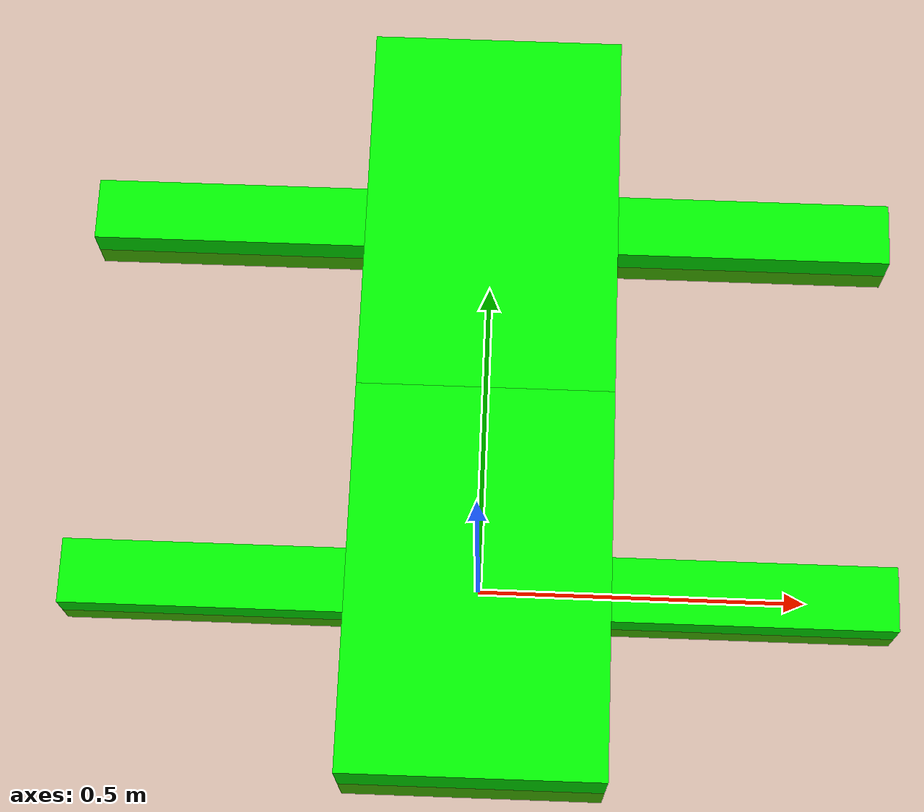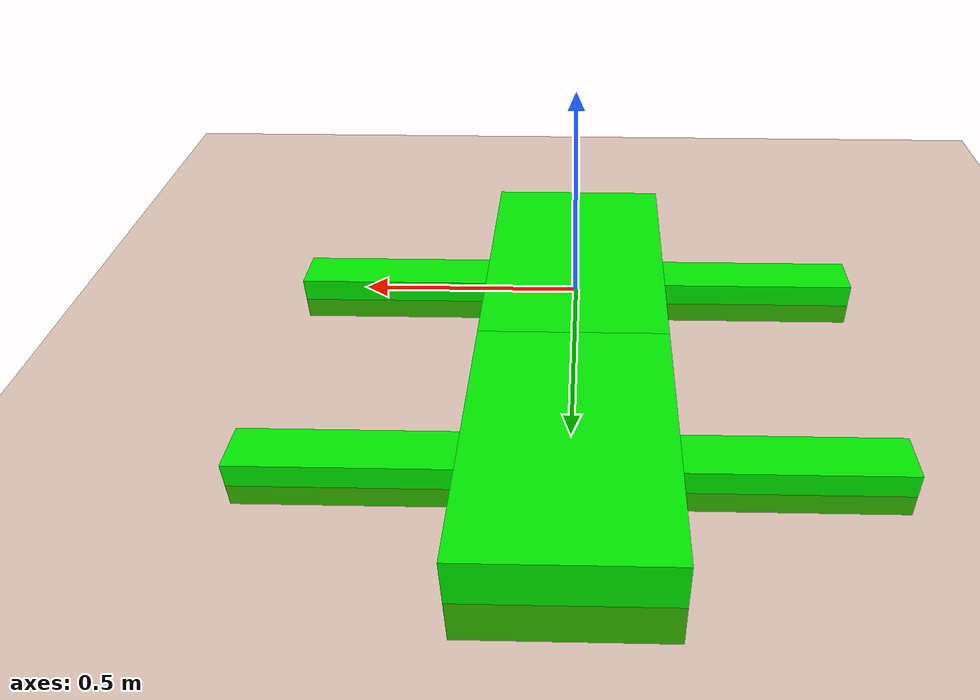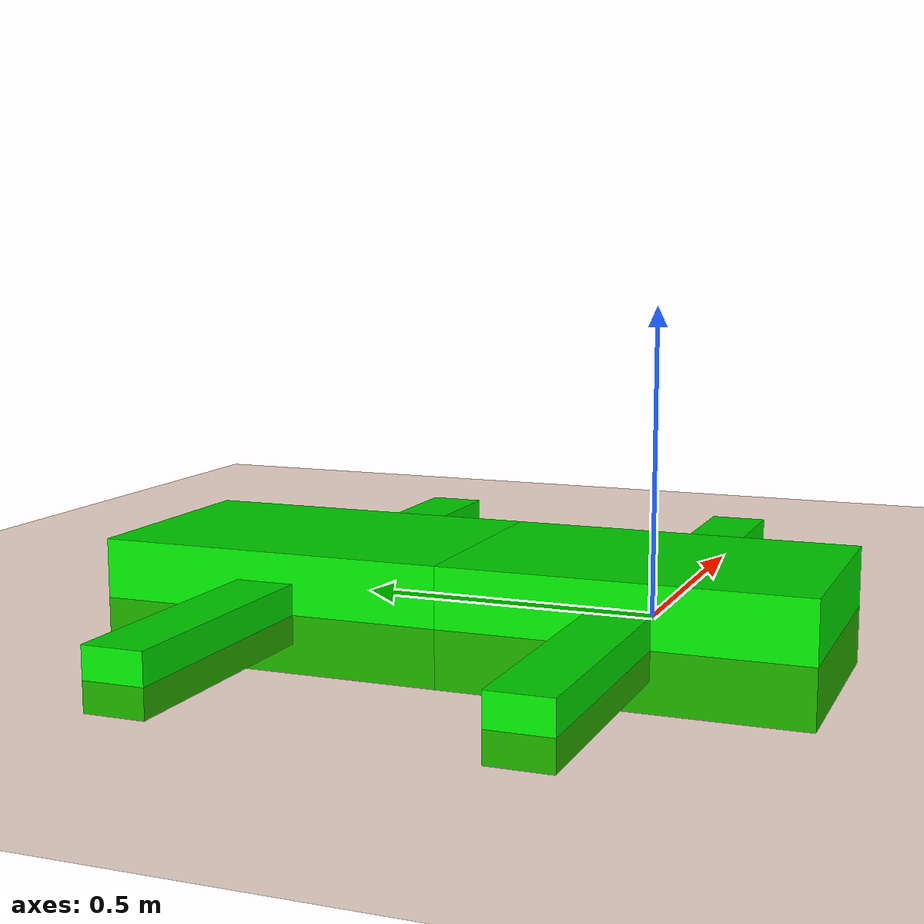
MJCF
<mujoco>
  <worldbody>
    <light diffuse=".5 .5 .5" pos="0 0 0" dir="0 -1 0" />
    <geom type="plane" size="10 10 0.1" rgba=".5 0.2 0 1" />
    <body name="unit0" pos="0 0 0" euler="0 0 0">
      <joint name="body_joint0" type="free" axis="0 0 0" pos="0 0 0" range="-20 20" />
      <body name="body0" pos="0 0.0 0" euler="0 0 0">
        <geom type="box" size=".2 .3 .1" rgba="0 .9 0 1" mass="1.2475272344667623" />
      </body>
      <body name="body0leg1" pos=".4 0.0 0" euler="0 -90 90">
        <joint name="body0j1" type="hinge" axis="0 1 0" pos="0 0 .25" range="-30 30" />
        <geom type="box" size=".05 .05 0.23751837304104093" rgba="0 .9 0 1" mass="0.8760923582264782" />
      </body>
      <body name="body0leg2" pos="-.4 0.0 0" euler="0 90 -90">
        <joint name="body0j2" type="hinge" axis="0 1 0" pos="0 0 .25" range="-30 30" />
        <geom type="box" size=".05 .05 0.23751837304104093" rgba="0 .9 0 1" mass="0.8760923582264782" />
      </body>
      <body name="unit1" pos="0 0 0" euler="0 0 0">
        <joint name="body_joint1" type="hinge" axis="0 0 1" pos="0 .35 0" range="-20 20" />
        <body name="body1" pos="0 0.6 0" euler="0 0 0">
          <geom type="box" size=".2 .3 .1" rgba="0 .9 0 1" mass="1.2475272344667623" />
        </body>
        <body name="body1leg1" pos=".4 0.6 0" euler="0 -90 90">
          <joint name="body1j1" type="hinge" axis="0 1 0" pos="0 0 .25" range="-30 30" />
          <geom type="box" size=".05 .05 0.23751837304104093" rgba="0 .9 0 1" mass="0.8760923582264782" />
        </body>
        <body name="body1leg2" pos="-.4 0.6 0" euler="0 90 -90">
          <joint name="body1j2" type="hinge" axis="0 1 0" pos="0 0 .25" range="-30 30" />
          <geom type="box" size=".05 .05 0.23751837304104093" rgba="0 .9 0 1" mass="0.8760923582264782" />
        </body>
      </body>
    </body>
  </worldbody>
  <actuator>
    <motor joint="body0j1" name="m_body0j1" gear="5" ctrllimited="true" ctrlrange="-10 10" />
    <motor joint="body0j2" name="m_body0j2" gear="5" ctrllimited="true" ctrlrange="-10 10" />
    <motor joint="body1j1" name="m_body1j1" gear="5" ctrllimited="true" ctrlrange="-10 10" />
    <motor joint="body1j2" name="m_body1j2" gear="5" ctrllimited="true" ctrlrange="-10 10" />
    <motor joint="body_joint1" name="m_body_joint1" gear="3" ctrllimited="true" ctrlrange="-5 5" />
  </actuator>
</mujoco>
